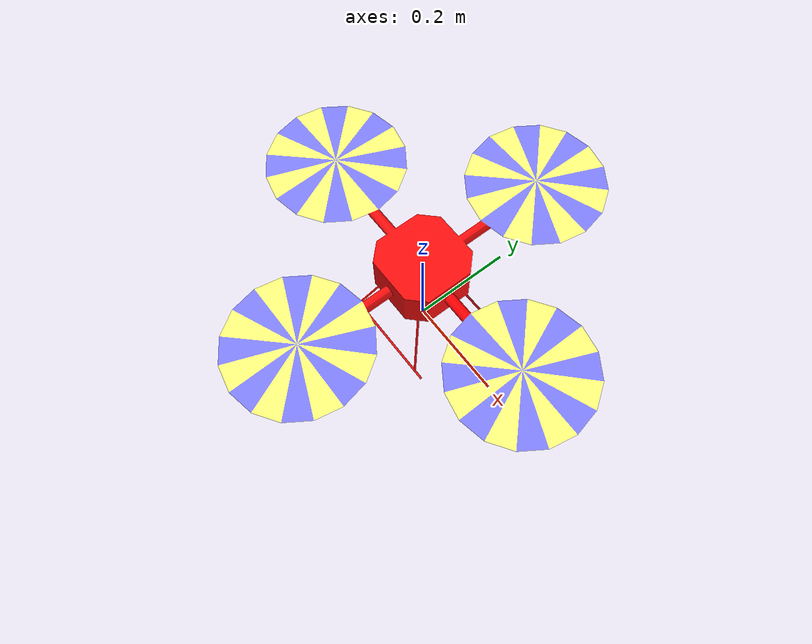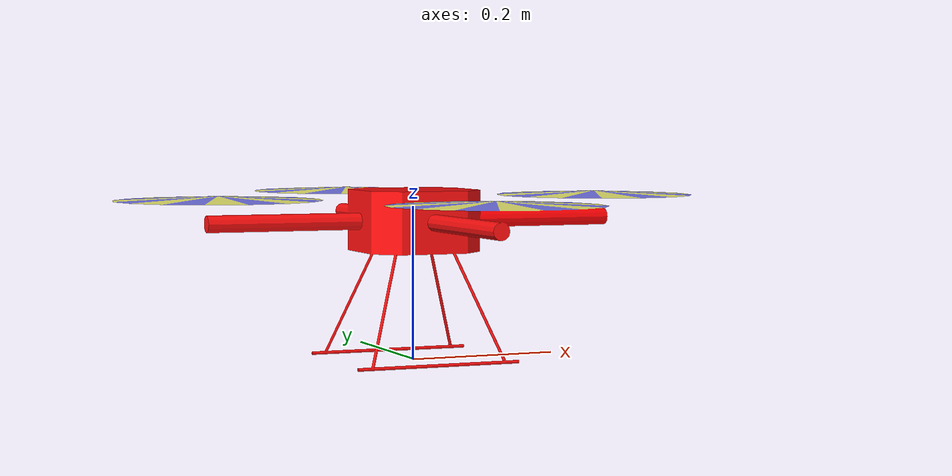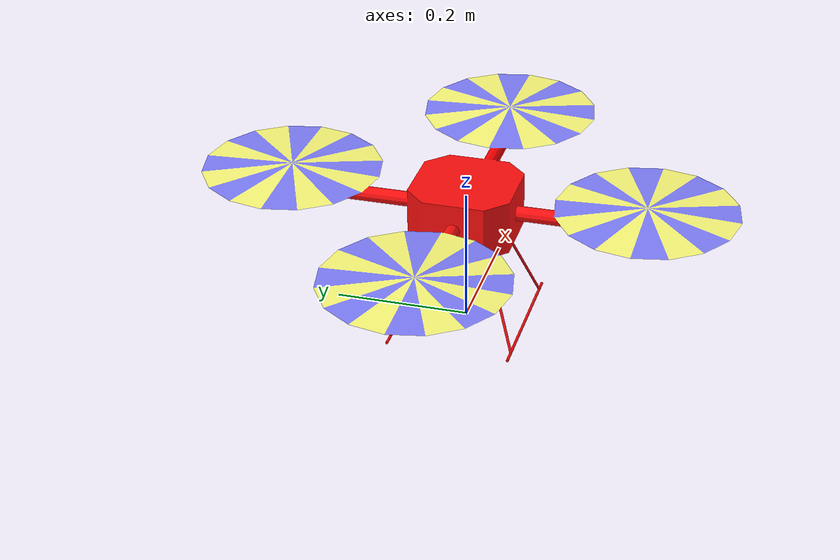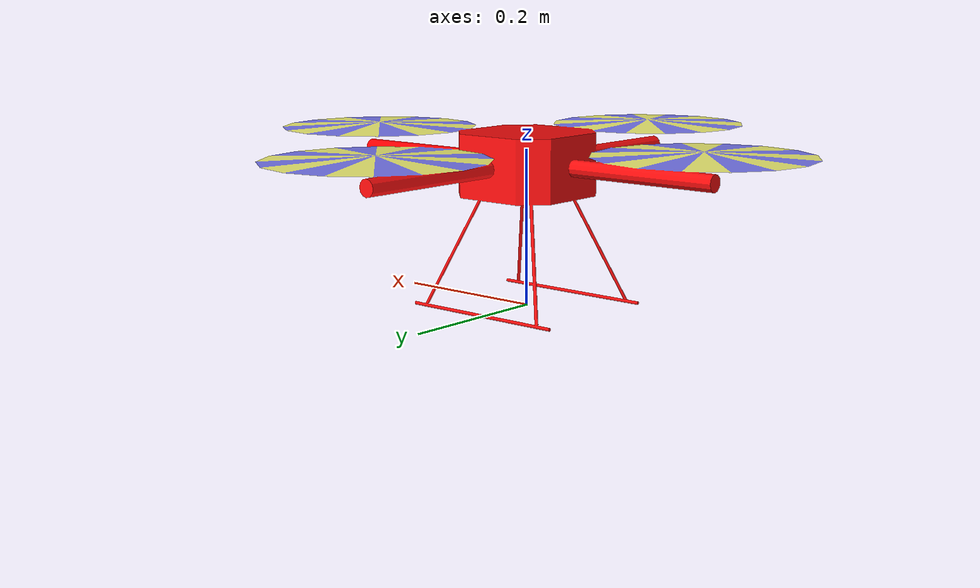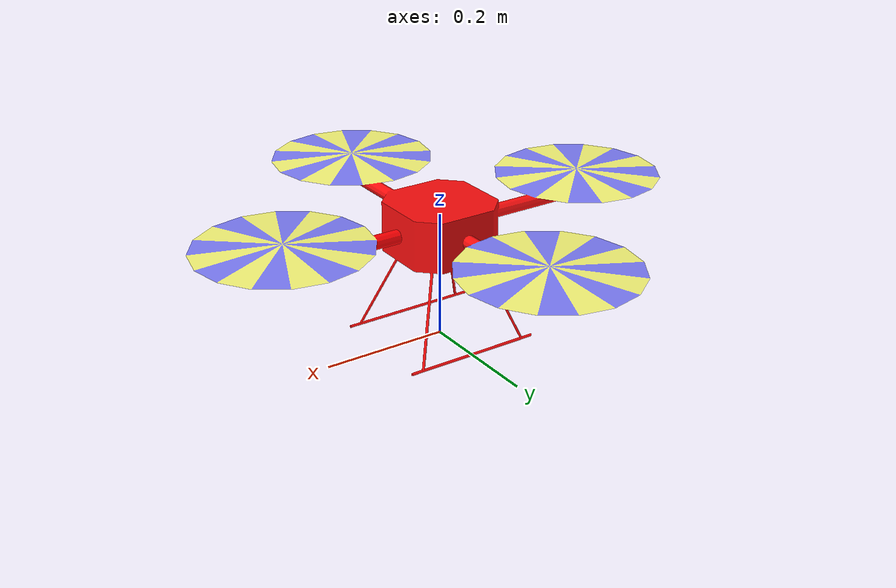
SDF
<?xml version="1.0" ?>
<sdf version="1.5">
  <model name="quadrotor">
    <static>false</static>
    <link name="link">
      <pose>0 0 0.182466 0 0 0</pose>
      <inertial>
        <mass>1.316</mass>
        <pose>0 0 0.0182466 0 0 0</pose>
        <inertia>
          <ixx>0.0128</ixx>
          <ixy>0</ixy>
          <ixz>0</ixz>
          <iyy>0.0128</iyy>
          <iyz>0</iyz>
          <izz>0.0218</izz>
        </inertia>
      </inertial>
      <collision name="collision">
        <geometry>
          <mesh>
            <uri>model://quadrotor/quadrotor_base.dae</uri>
          </mesh>
        </geometry>
      </collision>
      <visual name="visual">
        <geometry>
          <mesh>
            <uri>model://quadrotor/quadrotor_base.dae</uri>
          </mesh>
        </geometry>
      </visual>
    </link>

    <plugin name="drone_plugin" filename="libdrone_plugin.so">
    </plugin>

  </model>
</sdf>
